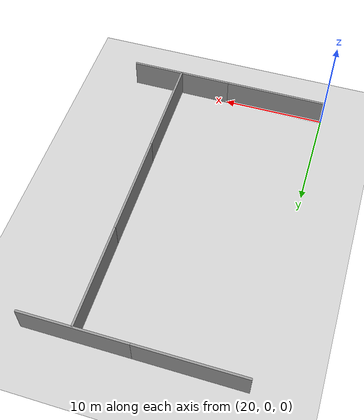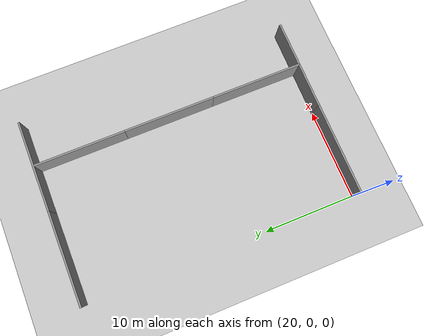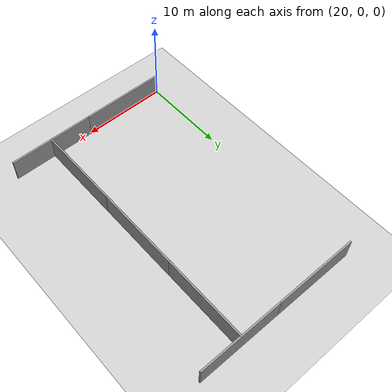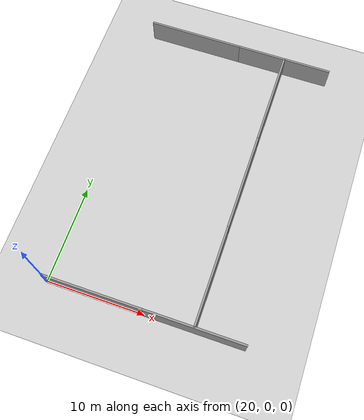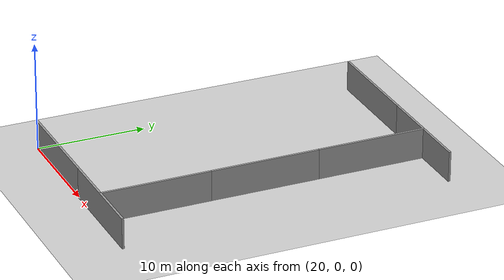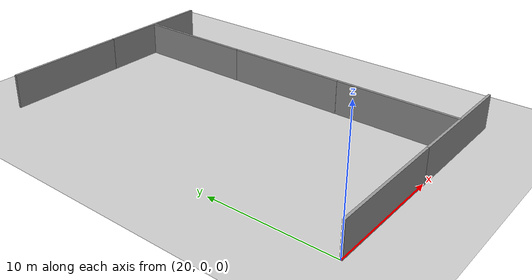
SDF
<sdf version="1.7">
 <world name="default">
  <model name="ground_plane">
   <static>1</static>
   <link name="link">
    <collision name="collision">
     <geometry><plane><normal>0 0 1</normal><size>100 100</size></plane></geometry>
     <surface><friction><ode><mu>100</mu><mu2>50</mu2></ode></friction></surface>
    </collision>
    <visual name="visual">
     <cast_shadows>0</cast_shadows>
     <geometry><plane><normal>0 0 1</normal><size>100 100</size></plane></geometry>
     <material>
      <script><uri>file://media/materials/scripts/gazebo.material</uri><name>Gazebo/Grey</name></script>
     </material>
    </visual>
   </link>
  </model>
  <model name="grey_wall_10_3">
   <link name="link">
    <pose>0 0 1.4 0 -0 0</pose>
    <inertial>
     <mass>1</mass>
     <inertia><ixx>1</ixx><ixy>0</ixy><ixz>0</ixz><iyy>1</iyy><iyz>0</iyz><izz>1</izz></inertia>
    </inertial>
    <visual name="visual">
     <cast_shadows>0</cast_shadows>
     <geometry><box><size>10 0.2 2.8</size></box></geometry>
     <material>
      <script>
       <uri>model://grey_wall/materials/scripts</uri>
       <uri>model://grey_wall/materials/textures</uri>
       <name>vrc/grey_wall</name>
      </script>
      <shader type="vertex"><normal_map>__default__</normal_map></shader>
      <ambient>1 1 1 1</ambient>
      <diffuse>1 1 1 1</diffuse>
      <specular>0 0 0 1</specular>
      <emissive>0 0 0 1</emissive>
     </material>
    </visual>
    <collision name="collision">
     <geometry><box><size>10 0.2 2.8</size></box></geometry>
     <surface>
      <friction>
       <ode><mu>1</mu><mu2>1</mu2><fdir1>0 0 0</fdir1><slip1>0</slip1><slip2>0</slip2></ode>
       <torsional>
        <coefficient>1</coefficient>
        <patch_radius>0</patch_radius>
        <surface_radius>0</surface_radius>
        <use_patch_radius>1</use_patch_radius>
        <ode><slip>0</slip></ode>
       </torsional>
      </friction>
      <bounce><restitution_coefficient>0</restitution_coefficient><threshold>1e+06</threshold></bounce>
      <contact>
       <collide_without_contact>0</collide_without_contact>
       <collide_without_contact_bitmask>1</collide_without_contact_bitmask>
       <collide_bitmask>1</collide_bitmask>
       <ode>
        <soft_cfm>0</soft_cfm>
        <soft_erp>0.2</soft_erp>
        <kp>1e+13</kp>
        <kd>1</kd>
        <max_vel>0.01</max_vel>
        <min_depth>0</min_depth>
       </ode>
       <bullet>
        <split_impulse>1</split_impulse>
        <split_impulse_penetration_threshold>-0.01</split_impulse_penetration_threshold>
        <soft_cfm>0</soft_cfm>
        <soft_erp>0.2</soft_erp>
        <kp>1e+13</kp>
        <kd>1</kd>
       </bullet>
      </contact>
     </surface>
    </collision>
   </link>
   <static>1</static>
   <pose>35 5 0 0 -0 1.57</pose>
  </model>
  <model name="grey_wall_10_5">
   <link name="link">
    <pose>0 0 1.4 0 -0 0</pose>
    <inertial>
     <mass>1</mass>
     <inertia><ixx>1</ixx><ixy>0</ixy><ixz>0</ixz><iyy>1</iyy><iyz>0</iyz><izz>1</izz></inertia>
    </inertial>
    <visual name="visual">
     <cast_shadows>0</cast_shadows>
     <geometry><box><size>10 0.2 2.8</size></box></geometry>
     <material>
      <script>
       <uri>model://grey_wall/materials/scripts</uri>
       <uri>model://grey_wall/materials/textures</uri>
       <name>vrc/grey_wall</name>
      </script>
      <shader type="vertex"><normal_map>__default__</normal_map></shader>
      <ambient>1 1 1 1</ambient>
      <diffuse>1 1 1 1</diffuse>
      <specular>0 0 0 1</specular>
      <emissive>0 0 0 1</emissive>
     </material>
    </visual>
    <collision name="collision">
     <geometry><box><size>10 0.2 2.8</size></box></geometry>
     <surface>
      <friction>
       <ode><mu>1</mu><mu2>1</mu2><fdir1>0 0 0</fdir1><slip1>0</slip1><slip2>0</slip2></ode>
       <torsional>
        <coefficient>1</coefficient>
        <patch_radius>0</patch_radius>
        <surface_radius>0</surface_radius>
        <use_patch_radius>1</use_patch_radius>
        <ode><slip>0</slip></ode>
       </torsional>
      </friction>
      <bounce><restitution_coefficient>0</restitution_coefficient><threshold>1e+06</threshold></bounce>
      <contact>
       <collide_without_contact>0</collide_without_contact>
       <collide_without_contact_bitmask>1</collide_without_contact_bitmask>
       <collide_bitmask>1</collide_bitmask>
       <ode>
        <soft_cfm>0</soft_cfm>
        <soft_erp>0.2</soft_erp>
        <kp>1e+13</kp>
        <kd>1</kd>
        <max_vel>0.01</max_vel>
        <min_depth>0</min_depth>
       </ode>
       <bullet>
        <split_impulse>1</split_impulse>
        <split_impulse_penetration_threshold>-0.01</split_impulse_penetration_threshold>
        <soft_cfm>0</soft_cfm>
        <soft_erp>0.2</soft_erp>
        <kp>1e+13</kp>
        <kd>1</kd>
       </bullet>
      </contact>
     </surface>
    </collision>
   </link>
   <static>1</static>
   <pose>35 15 0 0 -0 1.57</pose>
  </model>
  <model name="grey_wall_10_1_clone">
   <link name="link">
    <pose>0 0 1.4 0 -0 0</pose>
    <inertial>
     <mass>1</mass>
     <inertia><ixx>1</ixx><ixy>0</ixy><ixz>0</ixz><iyy>1</iyy><iyz>0</iyz><izz>1</izz></inertia>
    </inertial>
    <visual name="visual">
     <cast_shadows>0</cast_shadows>
     <geometry><box><size>10 0.2 2.8</size></box></geometry>
     <material>
      <script>
       <uri>model://grey_wall/materials/scripts</uri>
       <uri>model://grey_wall/materials/textures</uri>
       <name>vrc/grey_wall</name>
      </script>
      <shader type="vertex"><normal_map>__default__</normal_map></shader>
      <ambient>1 1 1 1</ambient>
      <diffuse>1 1 1 1</diffuse>
      <specular>0 0 0 1</specular>
      <emissive>0 0 0 1</emissive>
     </material>
    </visual>
    <collision name="collision">
     <geometry><box><size>10 0.2 2.8</size></box></geometry>
     <surface>
      <friction>
       <ode><mu>1</mu><mu2>1</mu2><fdir1>0 0 0</fdir1><slip1>0</slip1><slip2>0</slip2></ode>
       <torsional>
        <coefficient>1</coefficient>
        <patch_radius>0</patch_radius>
        <surface_radius>0</surface_radius>
        <use_patch_radius>1</use_patch_radius>
        <ode><slip>0</slip></ode>
       </torsional>
      </friction>
      <bounce><restitution_coefficient>0</restitution_coefficient><threshold>1e+06</threshold></bounce>
      <contact>
       <collide_without_contact>0</collide_without_contact>
       <collide_without_contact_bitmask>1</collide_without_contact_bitmask>
       <collide_bitmask>1</collide_bitmask>
       <ode>
        <soft_cfm>0</soft_cfm>
        <soft_erp>0.2</soft_erp>
        <kp>1e+13</kp>
        <kd>1</kd>
        <max_vel>0.01</max_vel>
        <min_depth>0</min_depth>
       </ode>
       <bullet>
        <split_impulse>1</split_impulse>
        <split_impulse_penetration_threshold>-0.01</split_impulse_penetration_threshold>
        <soft_cfm>0</soft_cfm>
        <soft_erp>0.2</soft_erp>
        <kp>1e+13</kp>
        <kd>1</kd>
       </bullet>
      </contact>
     </surface>
    </collision>
   </link>
   <static>1</static>
   <pose>25 0 0 0 -0 0</pose>
  </model>
  <model name="grey_wall_10_0_clone">
   <link name="link">
    <pose>0 0 1.4 0 -0 0</pose>
    <inertial>
     <mass>1</mass>
     <inertia><ixx>1</ixx><ixy>0</ixy><ixz>0</ixz><iyy>1</iyy><iyz>0</iyz><izz>1</izz></inertia>
    </inertial>
    <visual name="visual">
     <cast_shadows>0</cast_shadows>
     <geometry><box><size>10 0.2 2.8</size></box></geometry>
     <material>
      <script>
       <uri>model://grey_wall/materials/scripts</uri>
       <uri>model://grey_wall/materials/textures</uri>
       <name>vrc/grey_wall</name>
      </script>
      <shader type="vertex"><normal_map>__default__</normal_map></shader>
      <ambient>1 1 1 1</ambient>
      <diffuse>1 1 1 1</diffuse>
      <specular>0 0 0 1</specular>
      <emissive>0 0 0 1</emissive>
     </material>
    </visual>
    <collision name="collision">
     <geometry><box><size>10 0.2 2.8</size></box></geometry>
     <surface>
      <friction>
       <ode><mu>1</mu><mu2>1</mu2><fdir1>0 0 0</fdir1><slip1>0</slip1><slip2>0</slip2></ode>
       <torsional>
        <coefficient>1</coefficient>
        <patch_radius>0</patch_radius>
        <surface_radius>0</surface_radius>
        <use_patch_radius>1</use_patch_radius>
        <ode><slip>0</slip></ode>
       </torsional>
      </friction>
      <bounce><restitution_coefficient>0</restitution_coefficient><threshold>1e+06</threshold></bounce>
      <contact>
       <collide_without_contact>0</collide_without_contact>
       <collide_without_contact_bitmask>1</collide_without_contact_bitmask>
       <collide_bitmask>1</collide_bitmask>
       <ode>
        <soft_cfm>0</soft_cfm>
        <soft_erp>0.2</soft_erp>
        <kp>1e+13</kp>
        <kd>1</kd>
        <max_vel>0.01</max_vel>
        <min_depth>0</min_depth>
       </ode>
       <bullet>
        <split_impulse>1</split_impulse>
        <split_impulse_penetration_threshold>-0.01</split_impulse_penetration_threshold>
        <soft_cfm>0</soft_cfm>
        <soft_erp>0.2</soft_erp>
        <kp>1e+13</kp>
        <kd>1</kd>
       </bullet>
      </contact>
     </surface>
    </collision>
   </link>
   <static>1</static>
   <pose>25 30 0 0 -0 0</pose>
  </model>
  <model name="grey_wall_10_5_clone">
   <link name="link">
    <pose>0 0 1.4 0 -0 0</pose>
    <inertial>
     <mass>1</mass>
     <inertia><ixx>1</ixx><ixy>0</ixy><ixz>0</ixz><iyy>1</iyy><iyz>0</iyz><izz>1</izz></inertia>
    </inertial>
    <visual name="visual">
     <cast_shadows>0</cast_shadows>
     <geometry><box><size>10 0.2 2.8</size></box></geometry>
     <material>
      <script>
       <uri>model://grey_wall/materials/scripts</uri>
       <uri>model://grey_wall/materials/textures</uri>
       <name>vrc/grey_wall</name>
      </script>
      <shader type="vertex"><normal_map>__default__</normal_map></shader>
      <ambient>1 1 1 1</ambient>
      <diffuse>1 1 1 1</diffuse>
      <specular>0 0 0 1</specular>
      <emissive>0 0 0 1</emissive>
     </material>
    </visual>
    <collision name="collision">
     <geometry><box><size>10 0.2 2.8</size></box></geometry>
     <surface>
      <friction>
       <ode><mu>1</mu><mu2>1</mu2><fdir1>0 0 0</fdir1><slip1>0</slip1><slip2>0</slip2></ode>
       <torsional>
        <coefficient>1</coefficient>
        <patch_radius>0</patch_radius>
        <surface_radius>0</surface_radius>
        <use_patch_radius>1</use_patch_radius>
        <ode><slip>0</slip></ode>
       </torsional>
      </friction>
      <bounce><restitution_coefficient>0</restitution_coefficient><threshold>1e+06</threshold></bounce>
      <contact>
       <collide_without_contact>0</collide_without_contact>
       <collide_without_contact_bitmask>1</collide_without_contact_bitmask>
       <collide_bitmask>1</collide_bitmask>
       <ode>
        <soft_cfm>0</soft_cfm>
        <soft_erp>0.2</soft_erp>
        <kp>1e+13</kp>
        <kd>1</kd>
        <max_vel>0.01</max_vel>
        <min_depth>0</min_depth>
       </ode>
       <bullet>
        <split_impulse>1</split_impulse>
        <split_impulse_penetration_threshold>-0.01</split_impulse_penetration_threshold>
        <soft_cfm>0</soft_cfm>
        <soft_erp>0.2</soft_erp>
        <kp>1e+13</kp>
        <kd>1</kd>
       </bullet>
      </contact>
     </surface>
    </collision>
   </link>
   <static>1</static>
   <pose>35 25 0 0 -0 1.57</pose>
  </model>
  <model name="grey_wall_10_0_clone_clone">
   <link name="link">
    <pose>0 0 1.4 0 -0 0</pose>
    <inertial>
     <mass>1</mass>
     <inertia><ixx>1</ixx><ixy>0</ixy><ixz>0</ixz><iyy>1</iyy><iyz>0</iyz><izz>1</izz></inertia>
    </inertial>
    <visual name="visual">
     <cast_shadows>0</cast_shadows>
     <geometry><box><size>10 0.2 2.8</size></box></geometry>
     <material>
      <script>
       <uri>model://grey_wall/materials/scripts</uri>
       <uri>model://grey_wall/materials/textures</uri>
       <name>vrc/grey_wall</name>
      </script>
      <shader type="vertex"><normal_map>__default__</normal_map></shader>
      <ambient>1 1 1 1</ambient>
      <diffuse>1 1 1 1</diffuse>
      <specular>0 0 0 1</specular>
      <emissive>0 0 0 1</emissive>
     </material>
    </visual>
    <collision name="collision">
     <geometry><box><size>10 0.2 2.8</size></box></geometry>
     <surface>
      <friction>
       <ode><mu>1</mu><mu2>1</mu2><fdir1>0 0 0</fdir1><slip1>0</slip1><slip2>0</slip2></ode>
       <torsional>
        <coefficient>1</coefficient>
        <patch_radius>0</patch_radius>
        <surface_radius>0</surface_radius>
        <use_patch_radius>1</use_patch_radius>
        <ode><slip>0</slip></ode>
       </torsional>
      </friction>
      <bounce><restitution_coefficient>0</restitution_coefficient><threshold>1e+06</threshold></bounce>
      <contact>
       <collide_without_contact>0</collide_without_contact>
       <collide_without_contact_bitmask>1</collide_without_contact_bitmask>
       <collide_bitmask>1</collide_bitmask>
       <ode>
        <soft_cfm>0</soft_cfm>
        <soft_erp>0.2</soft_erp>
        <kp>1e+13</kp>
        <kd>1</kd>
        <max_vel>0.01</max_vel>
        <min_depth>0</min_depth>
       </ode>
       <bullet>
        <split_impulse>1</split_impulse>
        <split_impulse_penetration_threshold>-0.01</split_impulse_penetration_threshold>
        <soft_cfm>0</soft_cfm>
        <soft_erp>0.2</soft_erp>
        <kp>1e+13</kp>
        <kd>1</kd>
       </bullet>
      </contact>
     </surface>
    </collision>
   </link>
   <static>1</static>
   <pose>35 30 0 0 -0 0</pose>
  </model>
  <model name="grey_wall_10_1_clone_clone">
   <link name="link">
    <pose>0 0 1.4 0 -0 0</pose>
    <inertial>
     <mass>1</mass>
     <inertia><ixx>1</ixx><ixy>0</ixy><ixz>0</ixz><iyy>1</iyy><iyz>0</iyz><izz>1</izz></inertia>
    </inertial>
    <visual name="visual">
     <cast_shadows>0</cast_shadows>
     <geometry><box><size>10 0.2 2.8</size></box></geometry>
     <material>
      <script>
       <uri>model://grey_wall/materials/scripts</uri>
       <uri>model://grey_wall/materials/textures</uri>
       <name>vrc/grey_wall</name>
      </script>
      <shader type="vertex"><normal_map>__default__</normal_map></shader>
      <ambient>1 1 1 1</ambient>
      <diffuse>1 1 1 1</diffuse>
      <specular>0 0 0 1</specular>
      <emissive>0 0 0 1</emissive>
     </material>
    </visual>
    <collision name="collision">
     <geometry><box><size>10 0.2 2.8</size></box></geometry>
     <surface>
      <friction>
       <ode><mu>1</mu><mu2>1</mu2><fdir1>0 0 0</fdir1><slip1>0</slip1><slip2>0</slip2></ode>
       <torsional>
        <coefficient>1</coefficient>
        <patch_radius>0</patch_radius>
        <surface_radius>0</surface_radius>
        <use_patch_radius>1</use_patch_radius>
        <ode><slip>0</slip></ode>
       </torsional>
      </friction>
      <bounce><restitution_coefficient>0</restitution_coefficient><threshold>1e+06</threshold></bounce>
      <contact>
       <collide_without_contact>0</collide_without_contact>
       <collide_without_contact_bitmask>1</collide_without_contact_bitmask>
       <collide_bitmask>1</collide_bitmask>
       <ode>
        <soft_cfm>0</soft_cfm>
        <soft_erp>0.2</soft_erp>
        <kp>1e+13</kp>
        <kd>1</kd>
        <max_vel>0.01</max_vel>
        <min_depth>0</min_depth>
       </ode>
       <bullet>
        <split_impulse>1</split_impulse>
        <split_impulse_penetration_threshold>-0.01</split_impulse_penetration_threshold>
        <soft_cfm>0</soft_cfm>
        <soft_erp>0.2</soft_erp>
        <kp>1e+13</kp>
        <kd>1</kd>
       </bullet>
      </contact>
     </surface>
    </collision>
   </link>
   <static>1</static>
   <pose>35 0 0 0 -0 0</pose>
  </model>
 </world>
</sdf>
